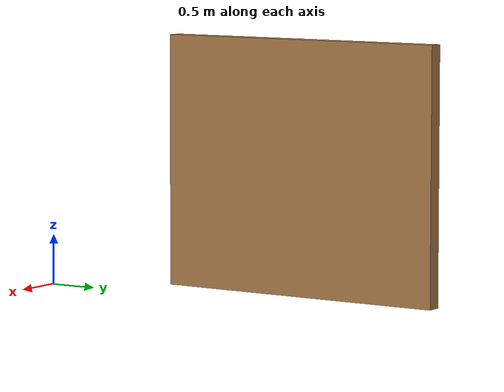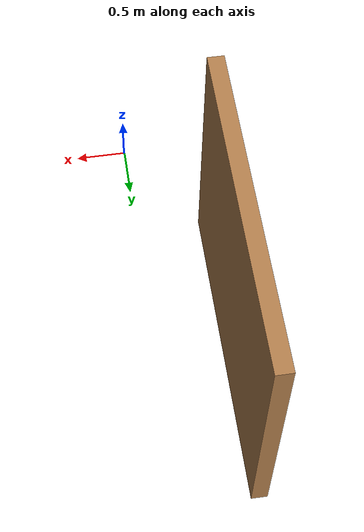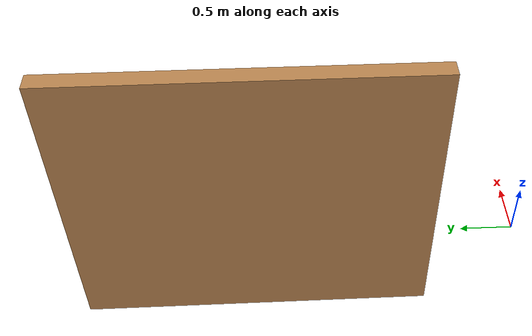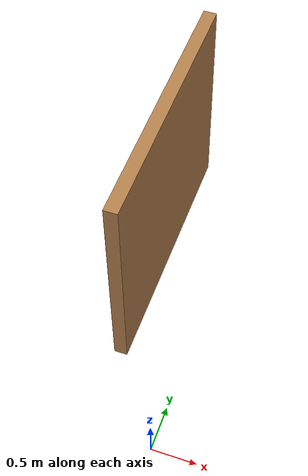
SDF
<?xml version='1.0'?>
<sdf version='1.7'>
  <model name='room_carol'>
    <pose>-0.395208 1.98838 0 0 -0 0</pose>
    <link name='Wall_3'>
      <collision name='Wall_3_Collision'>
        <geometry>
          <box>
            <size>3 0.15 2.5</size>
          </box>
        </geometry>
        <pose>0 0 1.25 0 -0 0</pose>
      </collision>
      <visual name='Wall_3_Visual'>
        <pose>0 0 1.25 0 -0 0</pose>
        <geometry>
          <box>
            <size>3 0.15 2.5</size>
          </box>
        </geometry>
        <material>
          <script>
            <uri>file://media/materials/scripts/gazebo.material</uri>
            <name>Gazebo/Wood</name>
          </script>
          <ambient>1 1 1 1</ambient>
        </material>
        <meta>
          <layer>0</layer>
        </meta>
      </visual>
      <pose>-0.320208 0.488383 0 0 -0 1.5708</pose>
    </link>
    <static>1</static>
  </model>
</sdf>
